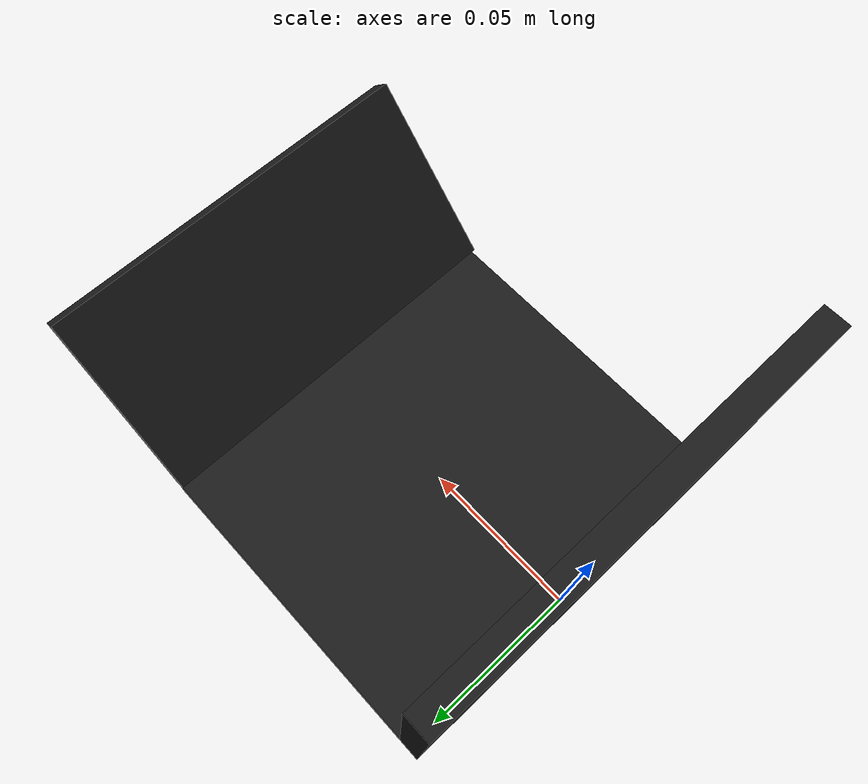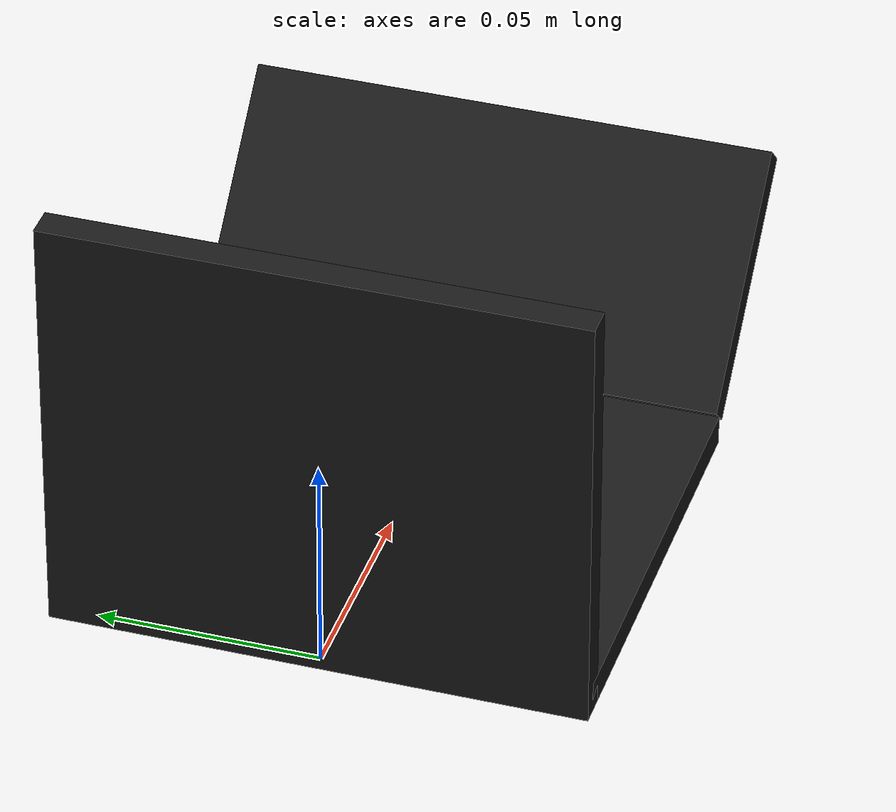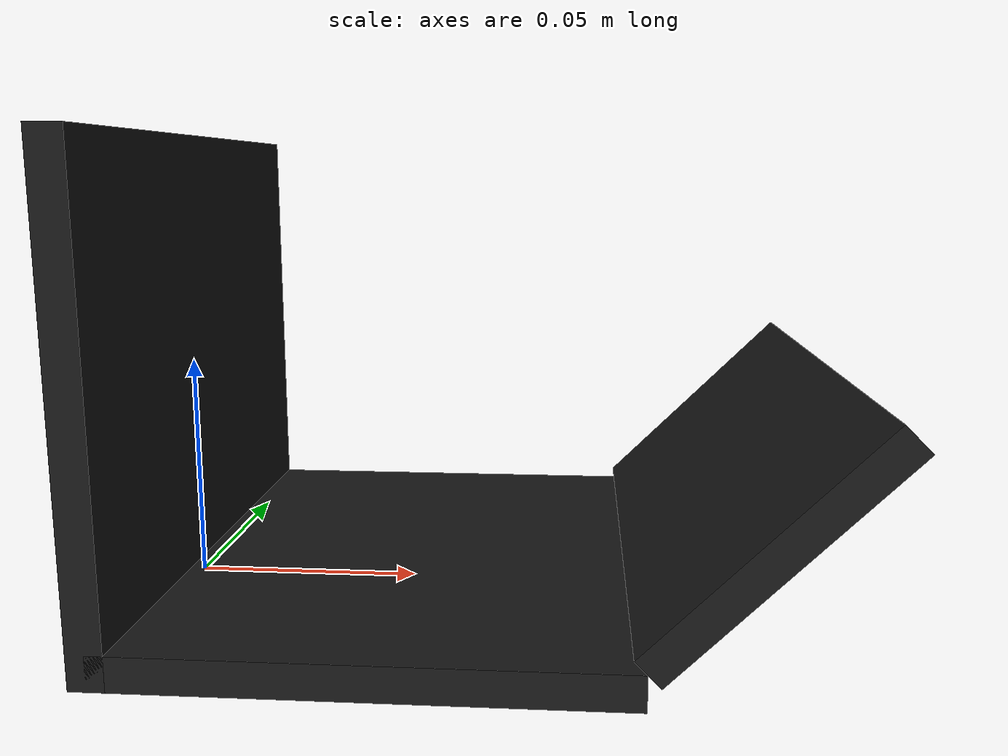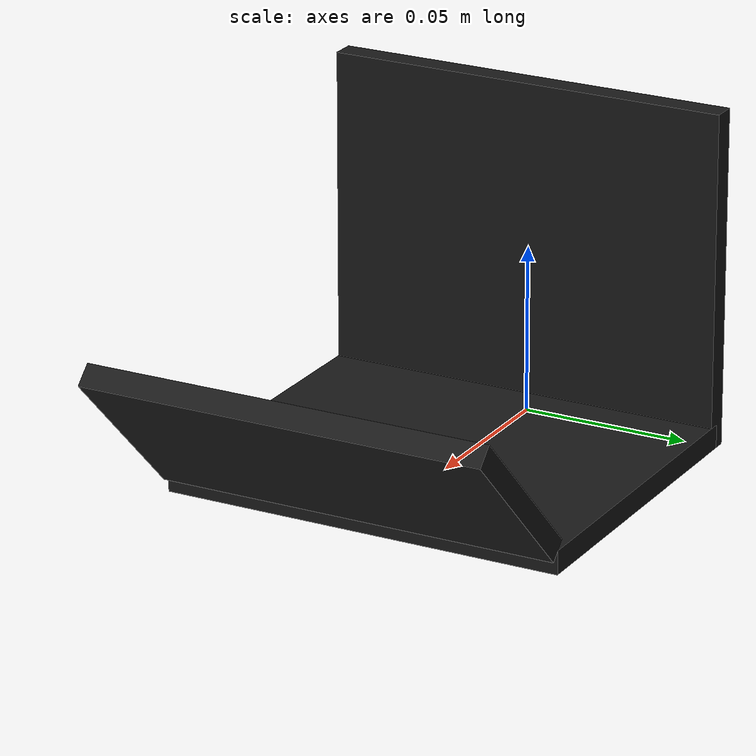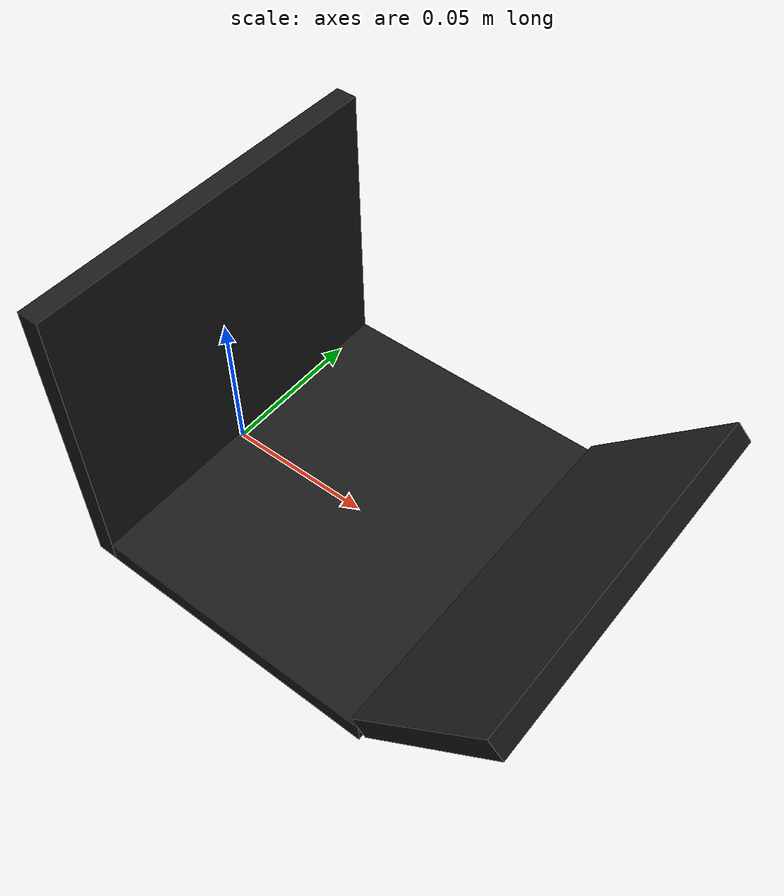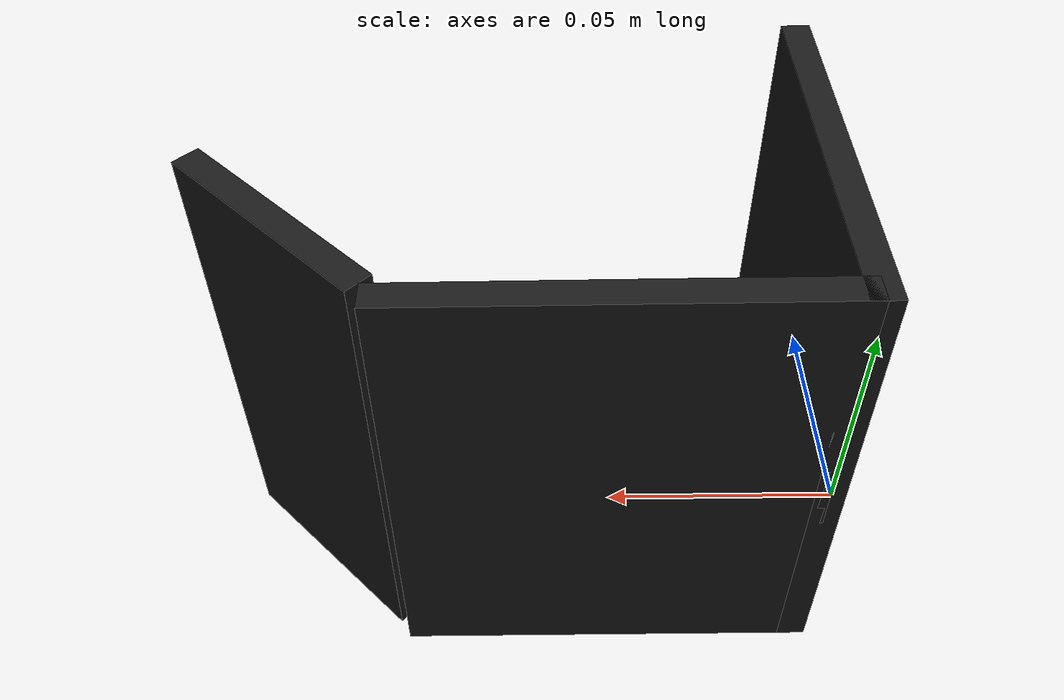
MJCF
<mujoco model="environment_fixture">
  <compiler angle="radian" autolimits="true" inertiafromgeom="true"/>

  <asset>
    <material name="env_fix_mat" rgba="0.1 0.1 0.1 1"/>
  </asset>

  <default>
    <default class="env_fixture">
      <geom condim="6" friction="0.6 0.005 0.0001" solimp="0.99 0.99 0.001" solref="0.01 1"
            material="env_fix_mat"/>
    </default>
  </default>

  <worldbody>
    <body name="environment_fixture" childclass="env_fixture">
      <geom name="environment_fixture_base" type="box" pos="0.050 0 0.0035" size="0.050 0.060 0.0035"/>
      <geom name="environment_fixture_wall" type="box" pos="0 0 0.05" size="0.0035 0.060 0.050"/>
      <geom name="environment_fixture_flap" type="box" pos="0.1212 0 0.0282" size="0.030 0.060 0.0035" quat="0.9239 0 -0.3827 0"/>
    </body>
  </worldbody>
</mujoco>
